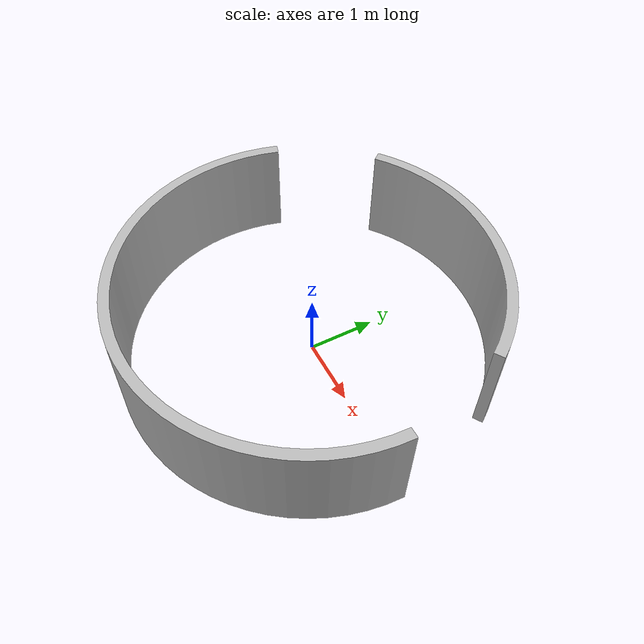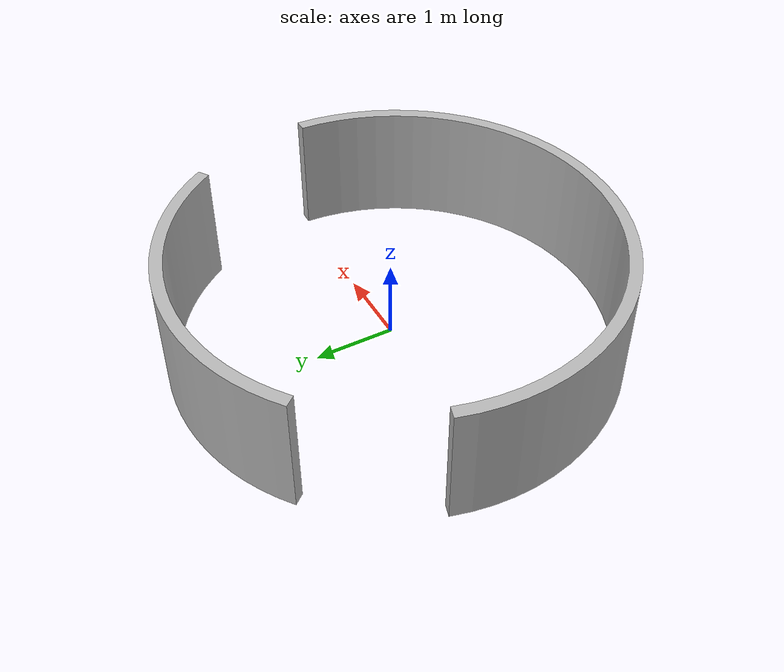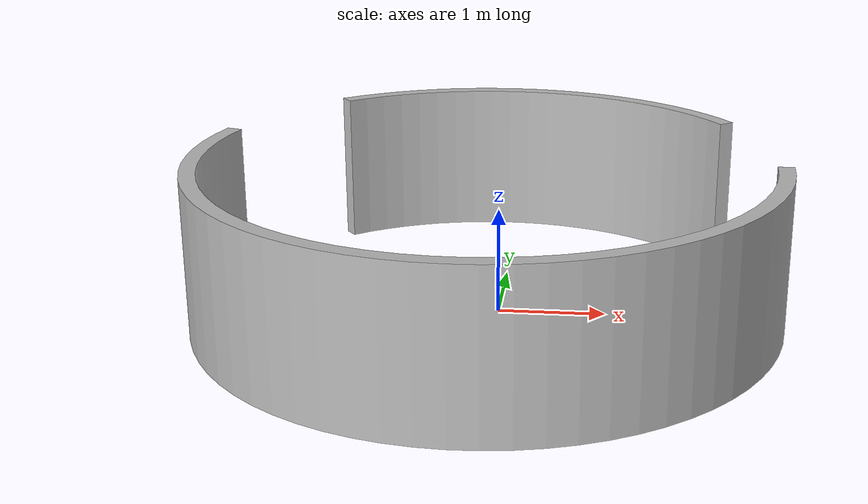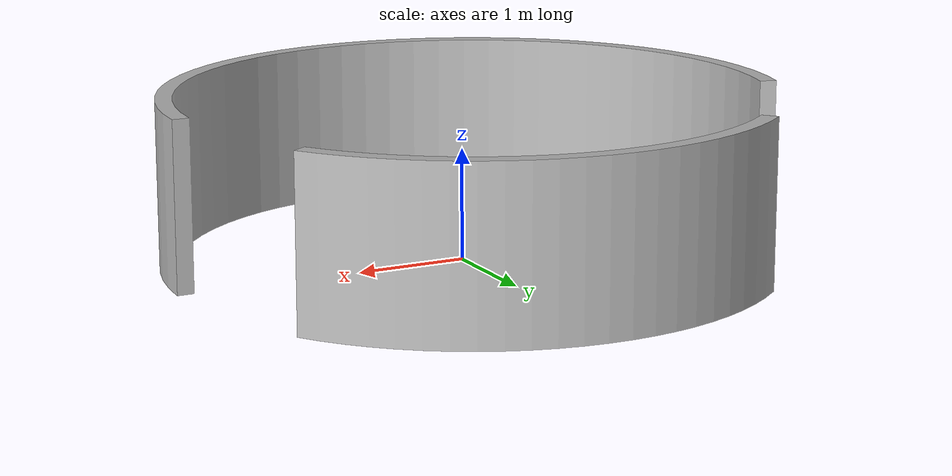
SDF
<?xml version="1.0"?>
<sdf version="1.4">
  <model name="round_B">
    <static>true</static>
    <link name="link">
      <collision name="collision">
        <geometry>
          <mesh>
            <uri>model://round_B/meshes/round_B.dae</uri>
          </mesh>
        </geometry>
      </collision>
      <visual name="visual">
        <geometry>
          <mesh>
            <uri>model://round_B/meshes/round_B.dae</uri>
          </mesh>
        </geometry>
      </visual>
    </link>
  </model>
</sdf>
round_A
